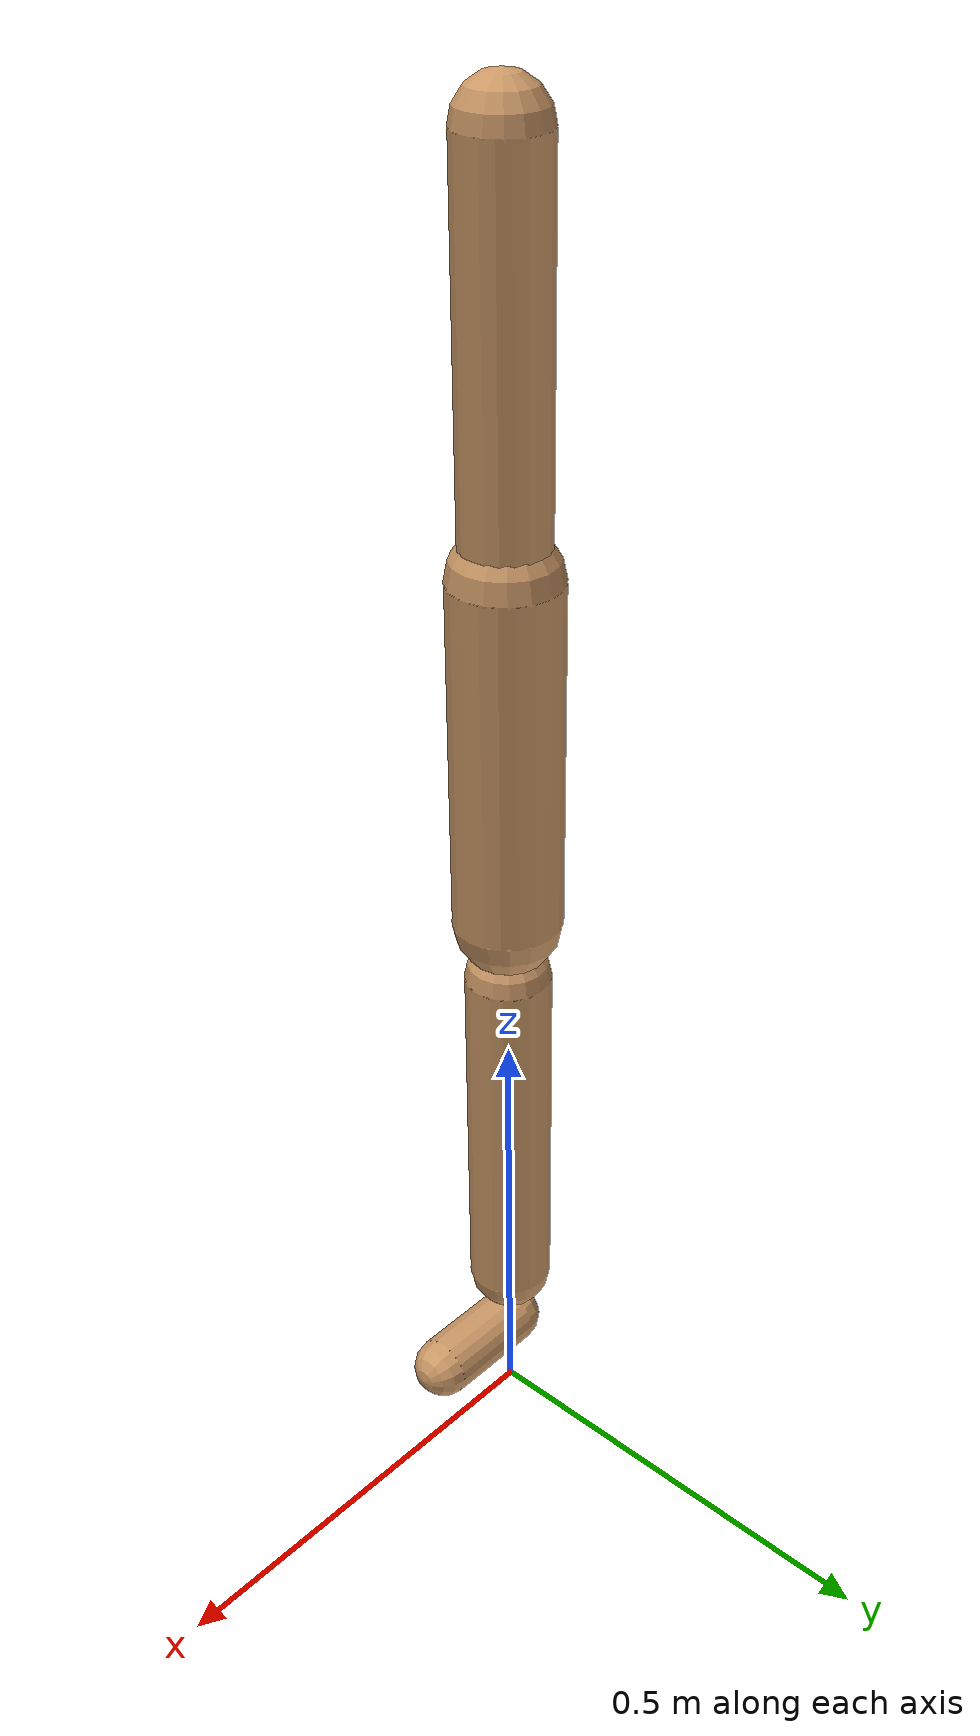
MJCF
<mujoco model="walker2d">
  <compiler angle="degree" coordinate="global" inertiafromgeom="true" />
  <default>
    <joint armature="0.01" damping=".1" limited="true" />
    <geom conaffinity="0" condim="3" contype="1" density="1000" friction="0.8 .1 .1" rgba="0.8 0.6 .4 1" />
  </default>
  <option integrator="RK4" timestep="0.002" />
  <worldbody>

    <body name="torso" pos="0 0 -0.14931209699803397">
      <joint armature="0" axis="1 0 0" damping="0" limited="false" name="ignorex" pos="0 0 0" stiffness="0" type="slide" />
      <joint armature="0" axis="0 0 1" damping="0" limited="false" name="ignorez" pos="0 0 0" ref="1.25" stiffness="0" type="slide" />
      <joint armature="0" axis="0 1 0" damping="0" limited="false" name="ignorey" pos="0 0 0" stiffness="0" type="hinge" />
      <geom fromto="0 0 1.45 0 0 1.05" name="torso_geom" size="0.04561275835974163" type="capsule" />
      <body name="thigh">
        <joint axis="0 -1 0" name="thigh_joint" pos="0 0 1.05" range="-150 0" type="hinge" />
        <geom fromto="0.0 0.0 1.05 0.0 0.0 0.6707267827885424" name="thigh_geom" size="0.05834606451329623" type="capsule" />
        <body name="leg" pos="0.0 0.0 0.07072678278854239">
          <joint axis="0 -1 0" name="leg_joint" pos="0 0 0.6" range="-150 0" type="hinge" />
          <geom fromto="0.0 0.0 0.6 0.0 0.0 0.17858531420949156" name="leg_geom" size="0.046676851610636984" type="capsule" />
          <body name="foot" pos="0.0 0.0 0.07858531420949155">
            <joint axis="0 -1 0" name="foot_joint" pos="0 0 0.1" range="-45 45" type="hinge" />
            <geom fromto="0.0 0.0 0.1 0.11489582732830338 0.0 0.1" name="foot_geom" size="0.03417481464401918" type="capsule" />
          </body>
        </body>
      </body>

      <body name="thigh_left">
        <joint axis="0 -1 0" name="thigh_left_joint" pos="0 0 1.05" range="-150 0" type="hinge" />
        <geom fromto="0.0 0.0 1.05 0.0 0.0 0.6707267827885424" name="thigh_left_geom" rgba=".7 .3 .6 1" size="0.05834606451329623" type="capsule" />
        <body name="leg_left" pos="0.0 0.0 0.07072678278854239">
          <joint axis="0 -1 0" name="leg_left_joint" pos="0 0 0.6" range="-150 0" type="hinge" />
          <geom fromto="0.0 0.0 0.6 0.0 0.0 0.17858531420949156" name="leg_left_geom" rgba=".7 .3 .6 1" size="0.046676851610636984" type="capsule" />
          <body name="foot_left" pos="0.0 0.0 0.07858531420949155">
            <joint axis="0 -1 0" name="foot_left_joint" pos="0 0 0.1" range="-45 45" type="hinge" />
            <geom fromto="0.0 0.0 0.1 0.11489582732830338 0.0 0.1" name="foot_left_geom" rgba=".7 .3 .6 1" size="0.03417481464401918" type="capsule" />
          </body>
        </body>
      </body>
    </body>
  </worldbody>
  <actuator>

    <motor ctrllimited="true" ctrlrange="-1.0 1.0" gear="100" joint="thigh_joint" />
    <motor ctrllimited="true" ctrlrange="-1.0 1.0" gear="100" joint="leg_joint" />
    <motor ctrllimited="true" ctrlrange="-1.0 1.0" gear="100" joint="foot_joint" />
    <motor ctrllimited="true" ctrlrange="-1.0 1.0" gear="100" joint="thigh_left_joint" />
    <motor ctrllimited="true" ctrlrange="-1.0 1.0" gear="100" joint="leg_left_joint" />
    <motor ctrllimited="true" ctrlrange="-1.0 1.0" gear="100" joint="foot_left_joint" />

  </actuator>
</mujoco>
